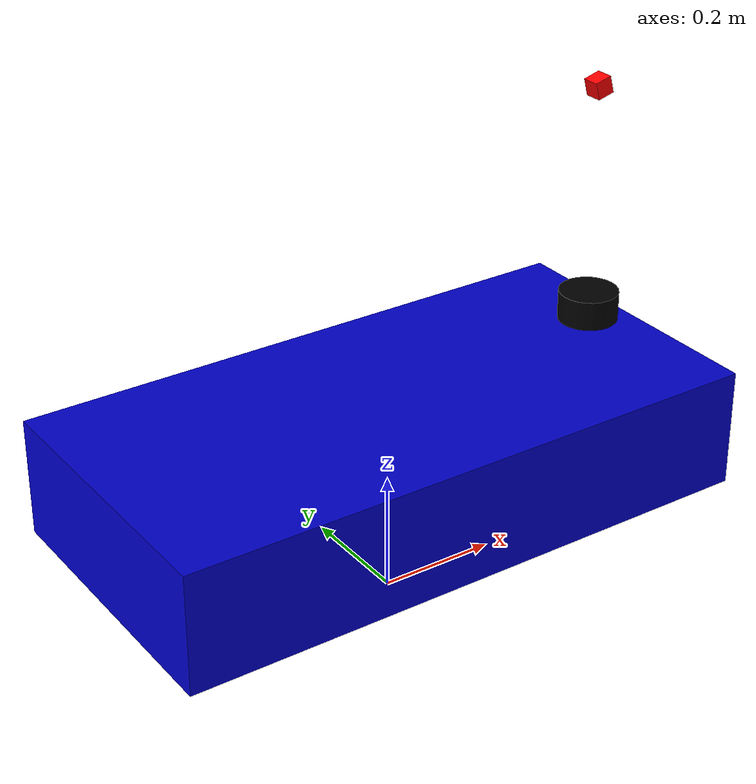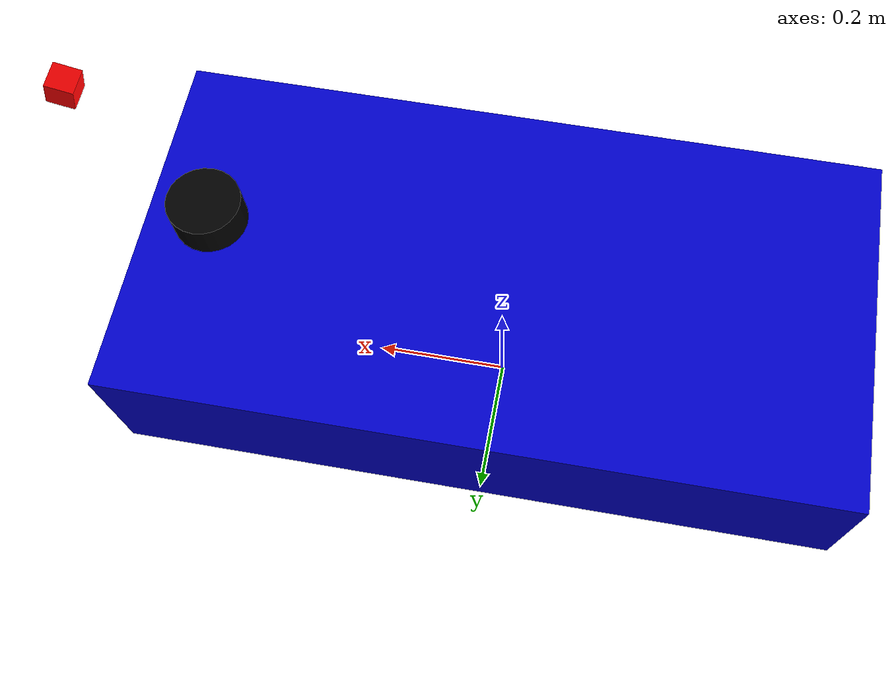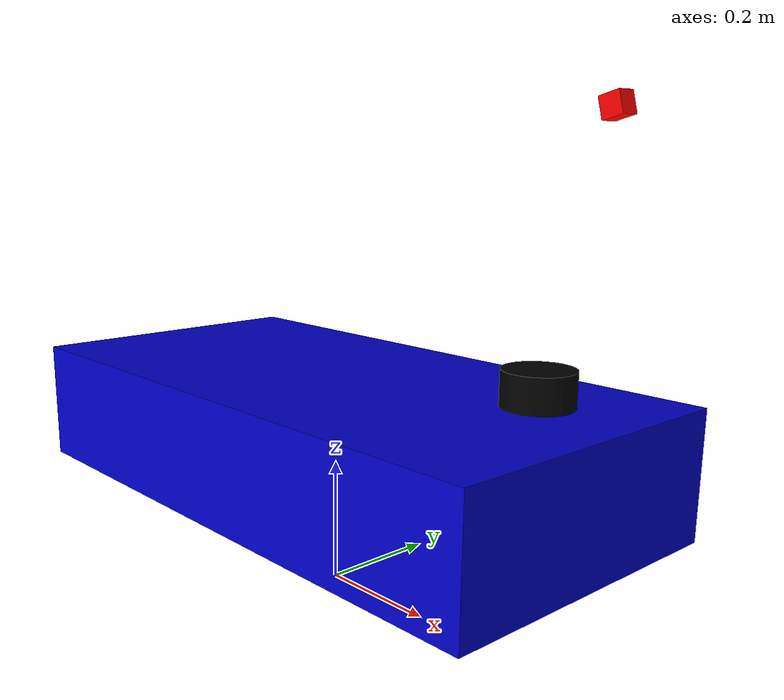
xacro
<?xml version="1.0"?>
<robot name="fsd_car" xmlns:xacro="http://www.ros.org/wiki/xacro">

  <xacro:property name="base_width" value="0.5"/>
  <xacro:property name="base_length" value="1.0"/>
  <xacro:property name="base_height" value="0.2"/>
  <xacro:property name="wheel_radius" value="0.15"/>
  <xacro:property name="wheel_width" value="0.1"/>
  <xacro:property name="pi" value="3.14159"/>

  <link name="base_link">
    <visual>
      <geometry>
        <box size="${base_length} ${base_width} ${base_height}"/>
      </geometry>
      <material name="blue">
        <color rgba="0 0 0.8 1"/>
      </material>
    </visual>
    <collision>
      <geometry>
        <box size="${base_length} ${base_width} ${base_height}"/>
      </geometry>
    </collision>
    <inertial>
      <mass value="20"/>
      <inertia ixx="1.0" ixy="0.0" ixz="0.0" iyy="1.0" iyz="0.0" izz="1.0"/>
    </inertial>
  </link>

  <link name="base_footprint"/>

  <joint name="base_footprint_joint" type="fixed">
    <parent link="base_footprint"/>
    <child link="base_link"/>
    <origin xyz="0 0 ${wheel_radius + base_height/2}" rpy="0 0 0"/>
  </joint>

  <link name="laser_link">
    <visual>
      <geometry>
        <cylinder radius="0.05" length="0.05"/>
      </geometry>
      <material name="black">
        <color rgba="0 0 0 1"/>
      </material>
    </visual>
    <collision>
      <geometry>
        <cylinder radius="0.05" length="0.05"/>
      </geometry>
    </collision>
    <inertial>
      <mass value="0.1"/>
      <inertia ixx="0.001" ixy="0.0" ixz="0.0" iyy="0.001" iyz="0.0" izz="0.001"/>
    </inertial>
  </link>

  <joint name="laser_joint" type="fixed">
    <parent link="base_link"/>
    <child link="laser_link"/>
    <origin xyz="${base_length/2 - 0.1} 0 0.15" rpy="0 0 0"/>
  </joint>

  <gazebo reference="laser_link">
    <sensor type="ray" name="lidar_sensor">
      <pose>0 0 0 0 0 0</pose>
      <visualize>true</visualize>
      <update_rate>10</update_rate>
      <ray>
        <scan>
          <horizontal>
            <samples>720</samples>
            <resolution>1</resolution>
            <min_angle>-3.14159</min_angle>
            <max_angle>3.14159</max_angle>
          </horizontal>
        </scan>
        <range>
          <min>0.1</min>
          <max>30.0</max>
          <resolution>0.01</resolution>
        </range>
        <noise>
          <type>gaussian</type>
          <mean>0.0</mean>
          <stddev>0.01</stddev>
        </noise>
      </ray>
      <plugin name="gazebo_ros_laser" filename="libgazebo_ros_laser.so">
        <topicName>/scan</topicName>
        <frameName>laser_link</frameName>
      </plugin>
    </sensor>
  </gazebo>

  <link name="camera_left_link">
    <visual>
      <geometry>
        <box size="0.03 0.03 0.03"/>
      </geometry>
      <material name="red">
        <color rgba="1 0 0 1"/>
      </material>
    </visual>
    <collision>
      <geometry>
        <box size="0.03 0.03 0.03"/>
      </geometry>
    </collision>
    <inertial>
      <mass value="0.05"/>
      <inertia ixx="0.0001" ixy="0.0" ixz="0.0" iyy="0.0001" iyz="0.0" izz="0.0001"/>
    </inertial>
  </link>

  <joint name="camera_left_joint" type="fixed">
    <parent link="base_link"/>
    <child link="camera_left_link"/>
    <origin xyz="${base_length/2 - 0.05} 0.06 0.50" rpy="0 ${-15*pi/180} 0"/>
  </joint>

<gazebo reference="camera_left_link">
  <sensor type="multicamera" name="zed_stereo_sensor">
    <update_rate>30.0</update_rate>

    <camera name="left">
      <horizontal_fov>1.91986</horizontal_fov>
      <image>
        <width>1280</width>
        <height>720</height>
        <format>R8G8B8</format>
      </image>
      <clip><near>0.1</near><far>100</far></clip>
    </camera>

    <camera name="right">
      <horizontal_fov>1.91986</horizontal_fov>
      <image>
        <width>1280</width>
        <height>720</height>
        <format>R8G8B8</format>
      </image>
      <clip><near>0.1</near><far>100</far></clip>
      <pose>0 -0.12 0 0 0 0</pose>
    </camera>

    <plugin name="stereo_camera_controller" filename="libgazebo_ros_multicamera.so">
      <alwaysOn>true</alwaysOn>
      <updateRate>30.0</updateRate>
      <cameraName>zed</cameraName>
      <imageTopicName>rgb/image_raw</imageTopicName>
      <cameraInfoTopicName>rgb/camera_info</cameraInfoTopicName>
      <frameName>camera_left_link</frameName>
      <hackBaseline>0.12</hackBaseline> </plugin>
  </sensor>
</gazebo>
</robot>
